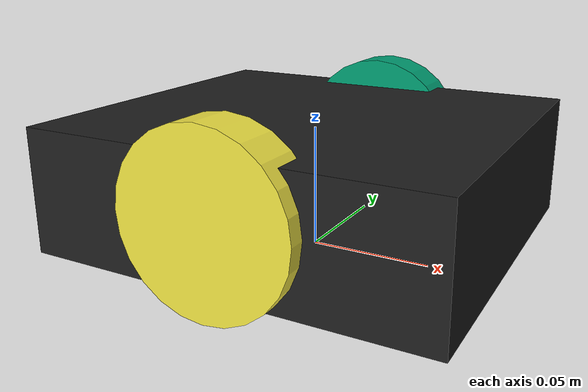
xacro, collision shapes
<?xml version="1.0" ?>
<robot name="romipi" xmlns:xacro="http://ros.org/wiki/xacro">
  <xacro:include filename="common_properties.xacro"/>
  <xacro:include filename="romipi.gazebo.xacro"/>

  <xacro:property name="base_link_mass" value="8.2573504e-01" />
  <xacro:property name="base_link_colision_l" value="0.1635" />
  <xacro:property name="base_link_colision_w" value="0.145" />
  <xacro:property name="base_link_colision_h" value="0.05" />

  <xacro:property name="wheel_mass" value="2.8498940e-02" />
  <xacro:property name="wheel_width" value="0.018" />
  <xacro:property name="wheel_radius" value="0.0345" />

  <xacro:property name="caster_mass" value="0.0005" />
  <xacro:property name="caster_colision_l" value="0.01" />
  <xacro:property name="caster_colision_w" value="0.01" />
  <xacro:property name="caster_colision_h" value="0.01" />

  <link name="base_footprint"/>

  <joint name="base_joint" type="fixed">
    <parent link="base_footprint"/>
    <child link="base_link"/>
    <origin xyz="0.0 0.0 0.00" rpy="0 0 0"/>
  </joint>

  <link name="base_link">
    <visual>
      <origin xyz="0.0 0.0 0.0" rpy="0 0 3.14"/>
      <geometry>
        <mesh filename="package://romipi_description/meshes/bases/romi_base.stl" scale="1 1 1"/>
      </geometry>
      <material name="light_black"/>
    </visual>

    <collision>
      <origin xyz="0.0 0.0 0.0315" rpy="0 0 0"/>
      <geometry>
        <box size="${base_link_colision_l} ${base_link_colision_w} ${base_link_colision_h}"/>
      </geometry>
    </collision>

    <inertial>
      <origin xyz="0 0 0.0315" rpy="0 0 ${pi/2}"/>
      <mass value="${base_link_mass}" />
      <inertia ixx="${(1/12) * base_link_mass * (base_link_colision_l**2 + base_link_colision_h**2)}" ixy="0" ixz="0"
               iyy="${(1/12) * base_link_mass * (base_link_colision_w**2 + base_link_colision_h**2)}" iyz="0"
               izz="${(1/12) * base_link_mass * (base_link_colision_w**2 + base_link_colision_l**2)}" />
    </inertial>
  </link>

  <joint name="wheel_left_joint" type="continuous">
    <parent link="base_link"/>
    <child link="wheel_left_link"/>
    <origin xyz="0.0 0.07 ${wheel_radius}" rpy="0 0 0"/>
    <axis xyz="0 1 0"/>
  </joint>

  <link name="wheel_left_link">
    <visual>
      <origin xyz="0 0.0 0.0" rpy="3.14 0 0"/>
      <geometry>
        <mesh filename="package://romipi_description/meshes/wheels/romi-left-wheel.stl" scale="1 1 1"/>
      </geometry>
      <material name="dark"/>
    </visual>

    <collision>
      <origin xyz="0 0 0" rpy="1.57 0 0"/>
      <geometry>
        <cylinder length="${wheel_width}" radius="${wheel_radius}"/>
      </geometry>
    </collision>

    <inertial>
      <origin xyz="0 0 0" rpy="1.57 0 0"/>
      <geometry>
        <cylinder length="${wheel_width}" radius="${wheel_radius}"/>
      </geometry>
      <mass value="${wheel_mass}" />

      <inertia ixx="${(1/12) * wheel_mass * (3 * wheel_radius**2 + wheel_width**2)}" ixy="0" ixz="0"
               iyy="${(1/12) * wheel_mass * (3 * wheel_radius**2 + wheel_width**2)}" iyz="0"
               izz="${(1/2) * wheel_mass * wheel_radius**2}" />
      </inertial>
  </link>

  <joint name="wheel_right_joint" type="continuous">
    <parent link="base_link"/>
    <child link="wheel_right_link"/>
    <origin xyz="0.0 -0.07 ${wheel_radius}" rpy="0 0 0"/>
    <axis xyz="0 1 0"/>
  </joint>

  <link name="wheel_right_link">
    <visual>
      <origin xyz="0 0 0" rpy="0 0 0"/>
      <geometry>
        <mesh filename="package://romipi_description/meshes/wheels/romi-right-wheel.stl" scale="1 1 1"/>
      </geometry>
      <material name="dark"/>
    </visual>

    <collision>
      <origin xyz="0 0 0" rpy="1.57 0 0"/>
      <geometry>
        <cylinder length="${wheel_width}" radius="${wheel_radius}"/>
      </geometry>
    </collision>

    <inertial>
      <origin xyz="0 0 0" rpy="1.57 0 0"/>
      <mass value="${wheel_mass}" />

      <inertia ixx="${(1/12) * wheel_mass * (3 * wheel_radius**2 + wheel_width**2)}" ixy="0" ixz="0"
               iyy="${(1/12) * wheel_mass * (3 * wheel_radius**2 + wheel_width**2)}" iyz="0"
               izz="${(1/2) * wheel_mass * wheel_radius**2}" />
      </inertial>
  </link>

  <joint name="caster_back_joint" type="fixed">
    <parent link="base_link"/>
    <child link="caster_back_link"/>
    <origin xyz="-0.0441 0.0435 0.0" rpy="0 0 0"/>
  </joint>

  <link name="caster_back_link">
    <visual>
      <origin xyz="0 0.0 0.0" rpy="0 0 0"/>
      <geometry>
        <mesh filename="package://romipi_description/meshes/wheels/romi-back-castor.stl" scale="1 1 1"/>
      </geometry>
      <material name="dark"/>
    </visual>

    <collision>
      <origin xyz="0.0 -0.045 0.005" rpy="0 0 0"/>
      <geometry>
        <box size="${caster_colision_l} ${caster_colision_w} ${caster_colision_h}"/>
      </geometry>
    </collision>

    <inertial>
      <origin xyz="0 0 0" />
      <mass value="${caster_mass}" />
      <inertia ixx="${(1/12) * caster_mass * (caster_colision_l**2 + caster_colision_h**2)}" ixy="0" ixz="0"
               iyy="${(1/12) * caster_mass * (caster_colision_w**2 + caster_colision_h**2)}" iyz="0"
               izz="${(1/12) * caster_mass * (caster_colision_w**2 + caster_colision_l**2)}" />
    </inertial>
  </link>

  <joint name="imu_joint" type="fixed">
    <parent link="base_link"/>
    <child link="imu_link"/>
    <origin xyz="-0.032 0 0.068" rpy="0 0 0"/>
  </joint>

  <link name="imu_link"/>

  <joint name="laser_joint" type='fixed'>
  	<parent link='base_link'/>
  	<child link='base_scan'/>
  	<origin xyz='0 0 0.01' rpy='0 0 0'/>
  </joint>

  <link name='base_scan'/>

</robot>
